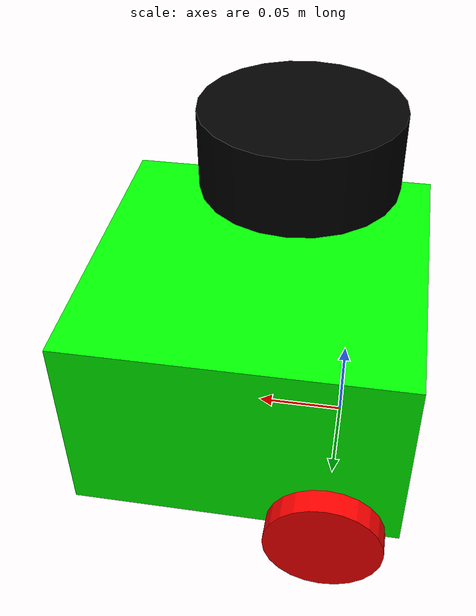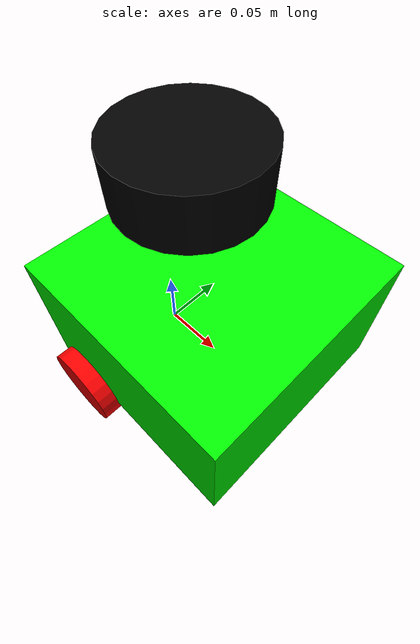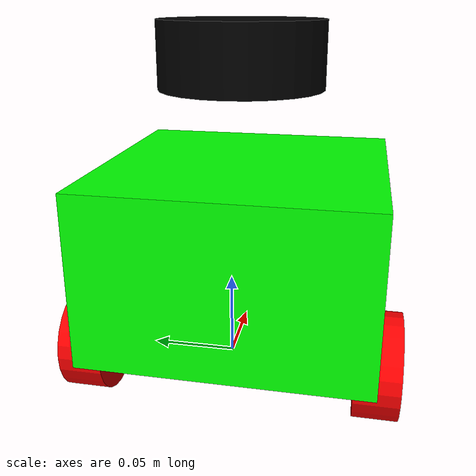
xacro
<?xml version="1.0"?>
<robot xmlns:xacro="http://www.ros.org/wiki/xacro" name="diff_bot">

    <xacro:include filename="properties.xacro"/>
    <xacro:include filename="inertial_macros.xacro"/>
    <xacro:include filename="chassis.xacro"/>
    <xacro:include filename="wheels.xacro"/>
    <xacro:include filename="caster_wheel.xacro"/>
    <xacro:include filename="gazebo_control.xacro"/>
    <xacro:include filename="control.xacro"/>
    <xacro:include filename="lidar.xacro"/>

    <!-- Base Link -->
    <link name="base_link"/>

    <!-- Base Footprint Link -->
    <link name="base_footprint"/>
    <joint name="base_footprint_joint" type="fixed">
        <parent link="base_link"/>
        <child link="base_footprint"/>
    </joint>

</robot>

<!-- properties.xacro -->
<robot xmlns:xacro="http://www.ros.org/wiki/xacro">

                                <!-- Properties -->
    <!-- Chassis -->
    <xacro:property name="chassis_length" value="0.18"/>
    <xacro:property name="chassis_width" value="0.18"/>
    <xacro:property name="chassis_height" value="0.11"/>
    <xacro:property name="chassis_mass" value="1.0"/>
    <!-- Wheels -->
    <xacro:property name="wheel_offset_x" value="0.04"/>
    <xacro:property name="wheel_offset_y" value="0.09"/>
    <xacro:property name="wheel_offset_z" value="-0.025"/>
    <xacro:property name="wheel_thickness" value="0.027"/>
    <xacro:property name="wheel_radius" value="0.0325"/>
    <xacro:property name="wheel_mass" value="0.037"/>
    <!-- Caster Wheel -->
    <xacro:property name="caster_wheel_radius" value="0.01"/>
    <xacro:property name="caster_wheel_mass" value="0.01"/>
    <xacro:property name="caster_wheel_offset_x" value="0.150"/>
    <xacro:property name="caster_wheel_offset_z" value="-0.035"/>

                                <!-- Colors -->
    <material name="white">
        <color rgba="1 1 1 1"/>
    </material>

    <material name="red">
        <color rgba="1 0 0 1"/>
    </material>

    <material name="green">
        <color rgba="0 1 0 1"/>
    </material>

    <material name="blue">
        <color rgba="0 0 1 1"/>
    </material>

    <material name="black">
        <color rgba="0 0 0 1"/>
    </material>
</robot>

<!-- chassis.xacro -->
<robot xmlns:xacro="http://www.ros.org/wiki/xacro">

    <!-- Chassis Link -->
    <link name="chassis_link">
        <visual>
            <geometry>
                <box size="${chassis_length} ${chassis_width} ${chassis_height}"/>
            </geometry>
            <origin xyz="${chassis_length/2} 0.0 ${chassis_height/2}"/>
            <material name="green"/>
        </visual>
        <collision>
            <origin xyz="${chassis_length/2} 0.0 ${chassis_height/2}"/>
        </collision>
        <xacro:inertial_box mass="${chassis_mass}" x="${chassis_length}" y="${chassis_width}" z="${chassis_height}">
            <origin xyz="${chassis_length/2} 0 ${chassis_height/2}" rpy="0 0 0"/>
        </xacro:inertial_box>
    </link>

    <!-- Chassis joint -->
    <joint name="chassis_joint" type="fixed">
        <parent link="base_link"/>
        <child link="chassis_link"/>
        <origin xyz="-${wheel_offset_x} 0.0 0.0"/>
    </joint>

    <gazebo reference="chassis_link">
        <material> Gazebo/Grey </material>
    </gazebo>

</robot>

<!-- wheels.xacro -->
<robot xmlns:xacro="http://www.ros.org/wiki/xacro">

    <!-- Wheel Link Macro -->
    <xacro:macro name="wheel_link" params="link_name">
        <link name="${link_name}">
            <visual>
                <geometry>
                    <cylinder radius="${wheel_radius}" length="${wheel_thickness}"/>
                </geometry>
                <material name="red"/>
            </visual>
            <collision>
                <geometry>
                    <sphere radius="${wheel_radius}"/>
                </geometry>
            </collision>
            <xacro:inertial_cylinder mass="${wheel_mass}" length="${wheel_thickness}" radius="${wheel_radius}">
            <origin xyz="0 0 0" rpy="0 0 0"/>
        </xacro:inertial_cylinder>
        </link>
    </xacro:macro>

    <!-- Wheel Joint Macro -->
    <xacro:macro name="wheel_joint" params="joint_name wheel_name y_offset ">
        <joint name="${joint_name}" type="continuous">
            <origin xyz="0 ${y_offset} 0" rpy="${-pi/2} 0.0 0.0"/>
            <parent link="base_link"/>
            <child link="${wheel_name}"/>
            <axis xyz="0.0 0.0 1"/>
        </joint>
    </xacro:macro>

    <!-- Left Wheel Link -->
    <xacro:wheel_link link_name="left_wheel_link" />

    <!-- Left Wheel Joint -->
    <xacro:wheel_joint joint_name="left_wheel_joint" wheel_name="left_wheel_link" y_offset="${wheel_offset_y}"/>

    <!-- Right Wheel Link -->
    <xacro:wheel_link link_name="right_wheel_link" />

    <!-- Right Wheel Joint -->
    <xacro:wheel_joint joint_name="right_wheel_joint" wheel_name="right_wheel_link" y_offset="${-wheel_offset_y}"/>

    <gazebo reference="left_wheel_link">
        <material> Gazebo/Black </material>
    </gazebo>

    <gazebo reference="right_wheel_link">
        <material> Gazebo/Black </material>
    </gazebo>
</robot>

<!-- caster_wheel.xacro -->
<robot xmlns:xacro="http://www.ros.org/wiki/xacro">

    <!-- Caster Wheel Link -->
    <link name="caster_wheel_link">
        <visual>
            <origin xyz="0.0 0.0 0.0" rpy="0.0 0.0 0.0"/>
            <geometry>
                <sphere radius="${caster_wheel_radius}"/>
            </geometry>
            <material name="blue"/>
        </visual>
        <collision>
            <origin xyz="0.0 0.0 0.0" rpy="0.0 0.0 0.0"/>
            <geometry>
                <sphere radius="${caster_wheel_radius}"/>
            </geometry>
        </collision>

        <xacro:inertial_sphere mass="${caster_wheel_mass}" radius="${caster_wheel_radius}">
            <origin xyz="0.0 0.0 0.0" rpy="0.0 0.0 0.0"/>
        </xacro:inertial_sphere>
    </link>

    <!-- Caster Wheel Joit -->
    <joint name="caster_wheel_joint" type="fixed">
        <origin xyz="${caster_wheel_offset_x} 0.0 ${caster_wheel_offset_z}" rpy="0.0 0.0 0.0"/>
        <parent link="chassis_link"/>
        <child link="caster_wheel_link"/>
    </joint>

    <!-- Caster Holder (Only for visuals) -->
    <link name="caster_holder">
        <visual>
            <geometry>
                <cylinder radius="${caster_wheel_radius/2}" length="${caster_wheel_offset_z*2}"/>
            </geometry>
            <material name="blue"/>
        </visual>
    </link>
    <joint name="holder_joint" type="fixed">
        <origin xyz="${caster_wheel_offset_x} 0.0 0.0" rpy="0.0 0.0 0.0"/>
        <parent link="chassis_link"/>
        <child link="caster_holder"/>
    </joint>

    <gazebo reference="caster_wheel_link">
        <mu1 value="0.001"/>
        <mu2 value="0.001"/>
    </gazebo>

</robot>

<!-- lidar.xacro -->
<robot xmlns:xacro="http://www.ros.org/wiki/xacro">

    <!-- Lidar Frame -->
    <link name="laser_frame">
        <visual>
            <geometry>
                <cylinder radius="0.05" length="0.04"/>
            </geometry>
            <material name="black"/>
        </visual>
    </link>
    <gazebo reference="laser_frame">
        <material>
            Gazebo/Black
        </material>
    </gazebo>

    <joint name="laser_joint" type="fixed">
        <origin xyz="0.07 0.0 0.18" rpy="0.0 0.0 0.0"/>
        <parent link="chassis_link"/>
        <child link="laser_frame"/>
    </joint>

    <!-- Lidar Plugin -->
    <gazebo reference="laser_frame">
        <material>Gazebo/Black</material>

        <sensor name="laser" type="ray">
            <pose> 0 0 0 0 0 0 </pose>
            <visualize>false</visualize>
            <update_rate>100</update_rate>
            <ray>
                <scan>
                    <horizontal>
                        <samples>360</samples>
                        <min_angle>-3.14</min_angle>
                        <max_angle>3.14</max_angle>
                    </horizontal>
                </scan>
                <range>
                    <min>0.3</min>
                    <max>12</max>
                </range>
            </ray>
            <plugin name="laser_controller" filename="libgazebo_ros_ray_sensor.so">
                <ros>
                    <argument>~/out:=scan</argument>
                </ros>
                <output_type>sensor_msgs/LaserScan</output_type>
                <frame_name>laser_frame</frame_name>
            </plugin>
        </sensor>
    </gazebo>
</robot>
